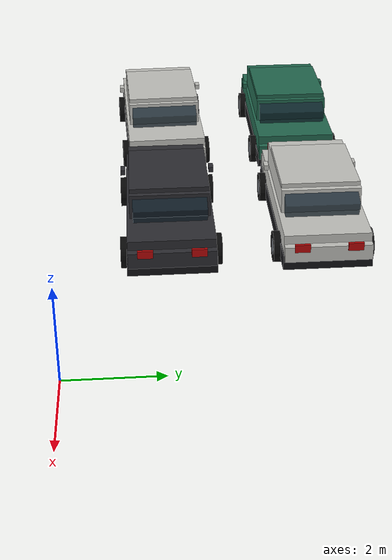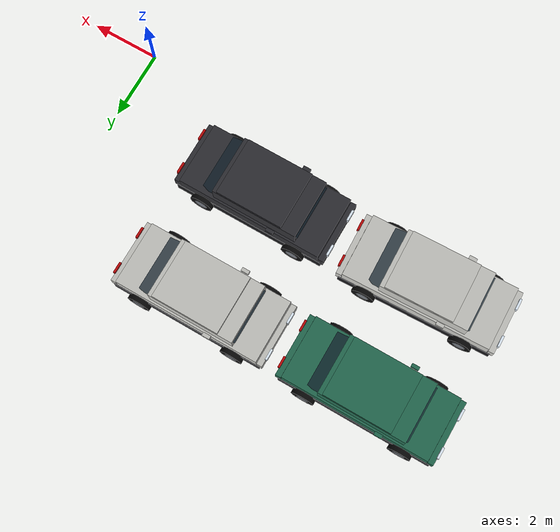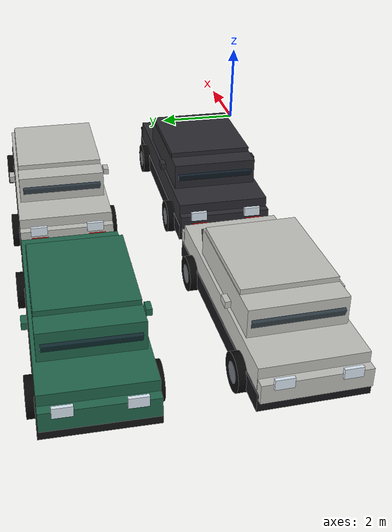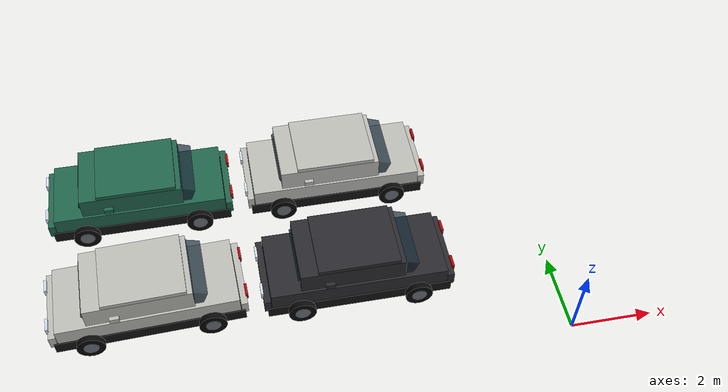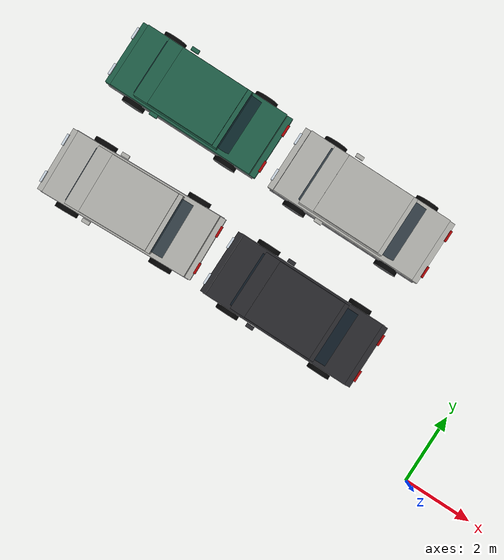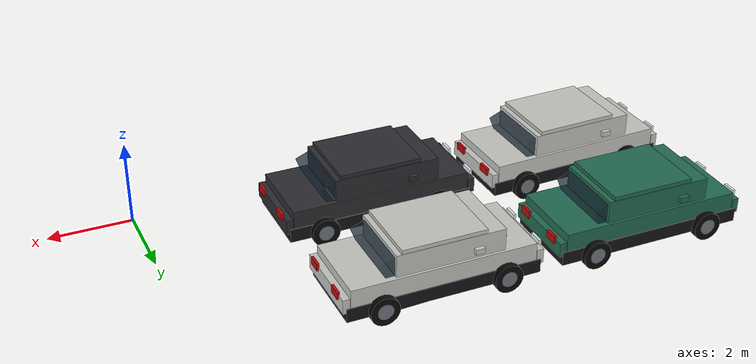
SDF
<sdf version="1.7">
 <world name="ev_car_carrier_deck_world">
  <model name="ev_11">
   <static>true</static>
   <pose>-10.0000 2.2000 0.2000 0.0000 0.0000 0.0350</pose>
   <link name="vehicle">
    <collision name="chassis_collision">
     <pose>0.0000 0.0000 0.4800 0.0000 0.0000 0.0000</pose>
     <geometry><box><size>4.45 1.86 0.32</size></box></geometry>
    </collision>
    <visual name="chassis_visual">
     <pose>0.0000 0.0000 0.4800 0.0000 0.0000 0.0000</pose>
     <geometry><box><size>4.45 1.86 0.32</size></box></geometry>
     <material><ambient>0.08 0.08 0.09 1</ambient><diffuse>0.08 0.08 0.09 1</diffuse></material>
    </visual>
    <collision name="lower_body_collision">
     <pose>0.0000 0.0000 0.7800 0.0000 0.0000 0.0000</pose>
     <geometry><box><size>4.25 1.82 0.55</size></box></geometry>
    </collision>
    <visual name="lower_body_visual">
     <pose>0.0000 0.0000 0.7800 0.0000 0.0000 0.0000</pose>
     <geometry><box><size>4.25 1.82 0.55</size></box></geometry>
     <material><ambient>0.78 0.78 0.76 1</ambient><diffuse>0.78 0.78 0.76 1</diffuse></material>
    </visual>
    <collision name="cabin_collision">
     <pose>-0.1500 0.0000 1.2500 0.0000 0.0000 0.0000</pose>
     <geometry><box><size>2.5 1.7 0.65</size></box></geometry>
    </collision>
    <visual name="cabin_visual">
     <pose>-0.1500 0.0000 1.2500 0.0000 0.0000 0.0000</pose>
     <geometry><box><size>2.5 1.7 0.65</size></box></geometry>
     <material><ambient>0.78 0.78 0.76 1</ambient><diffuse>0.78 0.78 0.76 1</diffuse></material>
    </visual>
    <visual name="windshield_visual">
     <pose>-1.0500 0.0000 1.3000 0.0000 -0.4000 0.0000</pose>
     <geometry><box><size>0.7 1.56 0.42</size></box></geometry>
     <material><ambient>0.1 0.17 0.22 0.75</ambient><diffuse>0.1 0.17 0.22 0.75</diffuse></material>
    </visual>
    <visual name="rear_glass_visual">
     <pose>1.1000 0.0000 1.2800 0.0000 0.3800 0.0000</pose>
     <geometry><box><size>0.55 1.56 0.4</size></box></geometry>
     <material><ambient>0.1 0.17 0.22 0.75</ambient><diffuse>0.1 0.17 0.22 0.75</diffuse></material>
    </visual>
    <collision name="roof_collision">
     <pose>0.0000 0.0000 1.6200 0.0000 0.0000 0.0000</pose>
     <geometry><box><size>1.95 1.68 0.1</size></box></geometry>
    </collision>
    <visual name="roof_visual">
     <pose>0.0000 0.0000 1.6200 0.0000 0.0000 0.0000</pose>
     <geometry><box><size>1.95 1.68 0.1</size></box></geometry>
     <material><ambient>0.78 0.78 0.76 1</ambient><diffuse>0.78 0.78 0.76 1</diffuse></material>
    </visual>
    <collision name="battery_pack_collision">
     <pose>0.1000 0.0000 0.3000 0.0000 0.0000 0.0000</pose>
     <geometry><box><size>2.75 1.45 0.16</size></box></geometry>
    </collision>
    <visual name="battery_pack_visual">
     <pose>0.1000 0.0000 0.3000 0.0000 0.0000 0.0000</pose>
     <geometry><box><size>2.75 1.45 0.16</size></box></geometry>
     <material><ambient>0.16 0.18 0.19 1</ambient><diffuse>0.16 0.18 0.19 1</diffuse></material>
    </visual>
    <collision name="front_bumper_collision">
     <pose>-2.2200 0.0000 0.7000 0.0000 0.0000 0.0000</pose>
     <geometry><box><size>0.16 1.82 0.34</size></box></geometry>
    </collision>
    <visual name="front_bumper_visual">
     <pose>-2.2200 0.0000 0.7000 0.0000 0.0000 0.0000</pose>
     <geometry><box><size>0.16 1.82 0.34</size></box></geometry>
     <material><ambient>0.78 0.78 0.76 1</ambient><diffuse>0.78 0.78 0.76 1</diffuse></material>
    </visual>
    <collision name="rear_bumper_collision">
     <pose>2.2200 0.0000 0.7000 0.0000 0.0000 0.0000</pose>
     <geometry><box><size>0.16 1.82 0.34</size></box></geometry>
    </collision>
    <visual name="rear_bumper_visual">
     <pose>2.2200 0.0000 0.7000 0.0000 0.0000 0.0000</pose>
     <geometry><box><size>0.16 1.82 0.34</size></box></geometry>
     <material><ambient>0.78 0.78 0.76 1</ambient><diffuse>0.78 0.78 0.76 1</diffuse></material>
    </visual>
    <collision name="wheel_0_0_collision">
     <pose>-1.4200 -0.9600 0.4300 1.5708 0.0000 0.0000</pose>
     <geometry><cylinder><radius>0.33</radius><length>0.2</length></cylinder></geometry>
    </collision>
    <visual name="wheel_0_0_visual">
     <pose>-1.4200 -0.9600 0.4300 1.5708 0.0000 0.0000</pose>
     <geometry><cylinder><radius>0.33</radius><length>0.2</length></cylinder></geometry>
     <material><ambient>0.035 0.035 0.035 1</ambient><diffuse>0.035 0.035 0.035 1</diffuse></material>
    </visual>
    <visual name="rim_0_0_visual">
     <pose>-1.4200 -0.9600 0.4300 1.5708 0.0000 0.0000</pose>
     <geometry><cylinder><radius>0.18</radius><length>0.205</length></cylinder></geometry>
     <material><ambient>0.45 0.47 0.5 1</ambient><diffuse>0.45 0.47 0.5 1</diffuse></material>
    </visual>
    <collision name="wheel_0_1_collision">
     <pose>-1.4200 0.9600 0.4300 1.5708 0.0000 0.0000</pose>
     <geometry><cylinder><radius>0.33</radius><length>0.2</length></cylinder></geometry>
    </collision>
    <visual name="wheel_0_1_visual">
     <pose>-1.4200 0.9600 0.4300 1.5708 0.0000 0.0000</pose>
     <geometry><cylinder><radius>0.33</radius><length>0.2</length></cylinder></geometry>
     <material><ambient>0.035 0.035 0.035 1</ambient><diffuse>0.035 0.035 0.035 1</diffuse></material>
    </visual>
    <visual name="rim_0_1_visual">
     <pose>-1.4200 0.9600 0.4300 1.5708 0.0000 0.0000</pose>
     <geometry><cylinder><radius>0.18</radius><length>0.205</length></cylinder></geometry>
     <material><ambient>0.45 0.47 0.5 1</ambient><diffuse>0.45 0.47 0.5 1</diffuse></material>
    </visual>
    <collision name="wheel_1_0_collision">
     <pose>1.4200 -0.9600 0.4300 1.5708 0.0000 0.0000</pose>
     <geometry><cylinder><radius>0.33</radius><length>0.2</length></cylinder></geometry>
    </collision>
    <visual name="wheel_1_0_visual">
     <pose>1.4200 -0.9600 0.4300 1.5708 0.0000 0.0000</pose>
     <geometry><cylinder><radius>0.33</radius><length>0.2</length></cylinder></geometry>
     <material><ambient>0.035 0.035 0.035 1</ambient><diffuse>0.035 0.035 0.035 1</diffuse></material>
    </visual>
    <visual name="rim_1_0_visual">
     <pose>1.4200 -0.9600 0.4300 1.5708 0.0000 0.0000</pose>
     <geometry><cylinder><radius>0.18</radius><length>0.205</length></cylinder></geometry>
     <material><ambient>0.45 0.47 0.5 1</ambient><diffuse>0.45 0.47 0.5 1</diffuse></material>
    </visual>
    <collision name="wheel_1_1_collision">
     <pose>1.4200 0.9600 0.4300 1.5708 0.0000 0.0000</pose>
     <geometry><cylinder><radius>0.33</radius><length>0.2</length></cylinder></geometry>
    </collision>
    <visual name="wheel_1_1_visual">
     <pose>1.4200 0.9600 0.4300 1.5708 0.0000 0.0000</pose>
     <geometry><cylinder><radius>0.33</radius><length>0.2</length></cylinder></geometry>
     <material><ambient>0.035 0.035 0.035 1</ambient><diffuse>0.035 0.035 0.035 1</diffuse></material>
    </visual>
    <visual name="rim_1_1_visual">
     <pose>1.4200 0.9600 0.4300 1.5708 0.0000 0.0000</pose>
     <geometry><cylinder><radius>0.18</radius><length>0.205</length></cylinder></geometry>
     <material><ambient>0.45 0.47 0.5 1</ambient><diffuse>0.45 0.47 0.5 1</diffuse></material>
    </visual>
    <visual name="headlight_l_visual">
     <pose>-2.3100 -0.5500 0.8800 0.0000 0.0000 0.0000</pose>
     <geometry><box><size>0.06 0.32 0.18</size></box></geometry>
     <material><ambient>0.9 0.95 1.0 1</ambient><diffuse>0.9 0.95 1.0 1</diffuse></material>
    </visual>
    <visual name="headlight_r_visual">
     <pose>-2.3100 0.5500 0.8800 0.0000 0.0000 0.0000</pose>
     <geometry><box><size>0.06 0.32 0.18</size></box></geometry>
     <material><ambient>0.9 0.95 1.0 1</ambient><diffuse>0.9 0.95 1.0 1</diffuse></material>
    </visual>
    <visual name="taillight_l_visual">
     <pose>2.3100 -0.5500 0.8600 0.0000 0.0000 0.0000</pose>
     <geometry><box><size>0.06 0.32 0.17</size></box></geometry>
     <material><ambient>0.75 0.03 0.03 1</ambient><diffuse>0.75 0.03 0.03 1</diffuse></material>
    </visual>
    <visual name="taillight_r_visual">
     <pose>2.3100 0.5500 0.8600 0.0000 0.0000 0.0000</pose>
     <geometry><box><size>0.06 0.32 0.17</size></box></geometry>
     <material><ambient>0.75 0.03 0.03 1</ambient><diffuse>0.75 0.03 0.03 1</diffuse></material>
    </visual>
    <collision name="mirror_l_collision">
     <pose>-0.7200 -0.9800 1.3000 0.0000 0.0000 0.0000</pose>
     <geometry><box><size>0.22 0.1 0.12</size></box></geometry>
    </collision>
    <visual name="mirror_l_visual">
     <pose>-0.7200 -0.9800 1.3000 0.0000 0.0000 0.0000</pose>
     <geometry><box><size>0.22 0.1 0.12</size></box></geometry>
     <material><ambient>0.78 0.78 0.76 1</ambient><diffuse>0.78 0.78 0.76 1</diffuse></material>
    </visual>
    <collision name="mirror_r_collision">
     <pose>-0.7200 0.9800 1.3000 0.0000 0.0000 0.0000</pose>
     <geometry><box><size>0.22 0.1 0.12</size></box></geometry>
    </collision>
    <visual name="mirror_r_visual">
     <pose>-0.7200 0.9800 1.3000 0.0000 0.0000 0.0000</pose>
     <geometry><box><size>0.22 0.1 0.12</size></box></geometry>
     <material><ambient>0.78 0.78 0.76 1</ambient><diffuse>0.78 0.78 0.76 1</diffuse></material>
    </visual>
   </link>
  </model>
  <model name="ev_12">
   <static>true</static>
   <pose>-5.0000 2.2000 0.2000 0.0000 0.0000 0.0000</pose>
   <link name="vehicle">
    <collision name="chassis_collision">
     <pose>0.0000 0.0000 0.4800 0.0000 0.0000 0.0000</pose>
     <geometry><box><size>4.45 1.86 0.32</size></box></geometry>
    </collision>
    <visual name="chassis_visual">
     <pose>0.0000 0.0000 0.4800 0.0000 0.0000 0.0000</pose>
     <geometry><box><size>4.45 1.86 0.32</size></box></geometry>
     <material><ambient>0.08 0.08 0.09 1</ambient><diffuse>0.08 0.08 0.09 1</diffuse></material>
    </visual>
    <collision name="lower_body_collision">
     <pose>0.0000 0.0000 0.7800 0.0000 0.0000 0.0000</pose>
     <geometry><box><size>4.25 1.82 0.55</size></box></geometry>
    </collision>
    <visual name="lower_body_visual">
     <pose>0.0000 0.0000 0.7800 0.0000 0.0000 0.0000</pose>
     <geometry><box><size>4.25 1.82 0.55</size></box></geometry>
     <material><ambient>0.18 0.18 0.2 1</ambient><diffuse>0.18 0.18 0.2 1</diffuse></material>
    </visual>
    <collision name="cabin_collision">
     <pose>-0.1500 0.0000 1.2500 0.0000 0.0000 0.0000</pose>
     <geometry><box><size>2.5 1.7 0.65</size></box></geometry>
    </collision>
    <visual name="cabin_visual">
     <pose>-0.1500 0.0000 1.2500 0.0000 0.0000 0.0000</pose>
     <geometry><box><size>2.5 1.7 0.65</size></box></geometry>
     <material><ambient>0.18 0.18 0.2 1</ambient><diffuse>0.18 0.18 0.2 1</diffuse></material>
    </visual>
    <visual name="windshield_visual">
     <pose>-1.0500 0.0000 1.3000 0.0000 -0.4000 0.0000</pose>
     <geometry><box><size>0.7 1.56 0.42</size></box></geometry>
     <material><ambient>0.1 0.17 0.22 0.75</ambient><diffuse>0.1 0.17 0.22 0.75</diffuse></material>
    </visual>
    <visual name="rear_glass_visual">
     <pose>1.1000 0.0000 1.2800 0.0000 0.3800 0.0000</pose>
     <geometry><box><size>0.55 1.56 0.4</size></box></geometry>
     <material><ambient>0.1 0.17 0.22 0.75</ambient><diffuse>0.1 0.17 0.22 0.75</diffuse></material>
    </visual>
    <collision name="roof_collision">
     <pose>0.0000 0.0000 1.6200 0.0000 0.0000 0.0000</pose>
     <geometry><box><size>1.95 1.68 0.1</size></box></geometry>
    </collision>
    <visual name="roof_visual">
     <pose>0.0000 0.0000 1.6200 0.0000 0.0000 0.0000</pose>
     <geometry><box><size>1.95 1.68 0.1</size></box></geometry>
     <material><ambient>0.18 0.18 0.2 1</ambient><diffuse>0.18 0.18 0.2 1</diffuse></material>
    </visual>
    <collision name="battery_pack_collision">
     <pose>0.1000 0.0000 0.3000 0.0000 0.0000 0.0000</pose>
     <geometry><box><size>2.75 1.45 0.16</size></box></geometry>
    </collision>
    <visual name="battery_pack_visual">
     <pose>0.1000 0.0000 0.3000 0.0000 0.0000 0.0000</pose>
     <geometry><box><size>2.75 1.45 0.16</size></box></geometry>
     <material><ambient>0.16 0.18 0.19 1</ambient><diffuse>0.16 0.18 0.19 1</diffuse></material>
    </visual>
    <collision name="front_bumper_collision">
     <pose>-2.2200 0.0000 0.7000 0.0000 0.0000 0.0000</pose>
     <geometry><box><size>0.16 1.82 0.34</size></box></geometry>
    </collision>
    <visual name="front_bumper_visual">
     <pose>-2.2200 0.0000 0.7000 0.0000 0.0000 0.0000</pose>
     <geometry><box><size>0.16 1.82 0.34</size></box></geometry>
     <material><ambient>0.18 0.18 0.2 1</ambient><diffuse>0.18 0.18 0.2 1</diffuse></material>
    </visual>
    <collision name="rear_bumper_collision">
     <pose>2.2200 0.0000 0.7000 0.0000 0.0000 0.0000</pose>
     <geometry><box><size>0.16 1.82 0.34</size></box></geometry>
    </collision>
    <visual name="rear_bumper_visual">
     <pose>2.2200 0.0000 0.7000 0.0000 0.0000 0.0000</pose>
     <geometry><box><size>0.16 1.82 0.34</size></box></geometry>
     <material><ambient>0.18 0.18 0.2 1</ambient><diffuse>0.18 0.18 0.2 1</diffuse></material>
    </visual>
    <collision name="wheel_0_0_collision">
     <pose>-1.4200 -0.9600 0.4300 1.5708 0.0000 0.0000</pose>
     <geometry><cylinder><radius>0.33</radius><length>0.2</length></cylinder></geometry>
    </collision>
    <visual name="wheel_0_0_visual">
     <pose>-1.4200 -0.9600 0.4300 1.5708 0.0000 0.0000</pose>
     <geometry><cylinder><radius>0.33</radius><length>0.2</length></cylinder></geometry>
     <material><ambient>0.035 0.035 0.035 1</ambient><diffuse>0.035 0.035 0.035 1</diffuse></material>
    </visual>
    <visual name="rim_0_0_visual">
     <pose>-1.4200 -0.9600 0.4300 1.5708 0.0000 0.0000</pose>
     <geometry><cylinder><radius>0.18</radius><length>0.205</length></cylinder></geometry>
     <material><ambient>0.45 0.47 0.5 1</ambient><diffuse>0.45 0.47 0.5 1</diffuse></material>
    </visual>
    <collision name="wheel_0_1_collision">
     <pose>-1.4200 0.9600 0.4300 1.5708 0.0000 0.0000</pose>
     <geometry><cylinder><radius>0.33</radius><length>0.2</length></cylinder></geometry>
    </collision>
    <visual name="wheel_0_1_visual">
     <pose>-1.4200 0.9600 0.4300 1.5708 0.0000 0.0000</pose>
     <geometry><cylinder><radius>0.33</radius><length>0.2</length></cylinder></geometry>
     <material><ambient>0.035 0.035 0.035 1</ambient><diffuse>0.035 0.035 0.035 1</diffuse></material>
    </visual>
    <visual name="rim_0_1_visual">
     <pose>-1.4200 0.9600 0.4300 1.5708 0.0000 0.0000</pose>
     <geometry><cylinder><radius>0.18</radius><length>0.205</length></cylinder></geometry>
     <material><ambient>0.45 0.47 0.5 1</ambient><diffuse>0.45 0.47 0.5 1</diffuse></material>
    </visual>
    <collision name="wheel_1_0_collision">
     <pose>1.4200 -0.9600 0.4300 1.5708 0.0000 0.0000</pose>
     <geometry><cylinder><radius>0.33</radius><length>0.2</length></cylinder></geometry>
    </collision>
    <visual name="wheel_1_0_visual">
     <pose>1.4200 -0.9600 0.4300 1.5708 0.0000 0.0000</pose>
     <geometry><cylinder><radius>0.33</radius><length>0.2</length></cylinder></geometry>
     <material><ambient>0.035 0.035 0.035 1</ambient><diffuse>0.035 0.035 0.035 1</diffuse></material>
    </visual>
    <visual name="rim_1_0_visual">
     <pose>1.4200 -0.9600 0.4300 1.5708 0.0000 0.0000</pose>
     <geometry><cylinder><radius>0.18</radius><length>0.205</length></cylinder></geometry>
     <material><ambient>0.45 0.47 0.5 1</ambient><diffuse>0.45 0.47 0.5 1</diffuse></material>
    </visual>
    <collision name="wheel_1_1_collision">
     <pose>1.4200 0.9600 0.4300 1.5708 0.0000 0.0000</pose>
     <geometry><cylinder><radius>0.33</radius><length>0.2</length></cylinder></geometry>
    </collision>
    <visual name="wheel_1_1_visual">
     <pose>1.4200 0.9600 0.4300 1.5708 0.0000 0.0000</pose>
     <geometry><cylinder><radius>0.33</radius><length>0.2</length></cylinder></geometry>
     <material><ambient>0.035 0.035 0.035 1</ambient><diffuse>0.035 0.035 0.035 1</diffuse></material>
    </visual>
    <visual name="rim_1_1_visual">
     <pose>1.4200 0.9600 0.4300 1.5708 0.0000 0.0000</pose>
     <geometry><cylinder><radius>0.18</radius><length>0.205</length></cylinder></geometry>
     <material><ambient>0.45 0.47 0.5 1</ambient><diffuse>0.45 0.47 0.5 1</diffuse></material>
    </visual>
    <visual name="headlight_l_visual">
     <pose>-2.3100 -0.5500 0.8800 0.0000 0.0000 0.0000</pose>
     <geometry><box><size>0.06 0.32 0.18</size></box></geometry>
     <material><ambient>0.9 0.95 1.0 1</ambient><diffuse>0.9 0.95 1.0 1</diffuse></material>
    </visual>
    <visual name="headlight_r_visual">
     <pose>-2.3100 0.5500 0.8800 0.0000 0.0000 0.0000</pose>
     <geometry><box><size>0.06 0.32 0.18</size></box></geometry>
     <material><ambient>0.9 0.95 1.0 1</ambient><diffuse>0.9 0.95 1.0 1</diffuse></material>
    </visual>
    <visual name="taillight_l_visual">
     <pose>2.3100 -0.5500 0.8600 0.0000 0.0000 0.0000</pose>
     <geometry><box><size>0.06 0.32 0.17</size></box></geometry>
     <material><ambient>0.75 0.03 0.03 1</ambient><diffuse>0.75 0.03 0.03 1</diffuse></material>
    </visual>
    <visual name="taillight_r_visual">
     <pose>2.3100 0.5500 0.8600 0.0000 0.0000 0.0000</pose>
     <geometry><box><size>0.06 0.32 0.17</size></box></geometry>
     <material><ambient>0.75 0.03 0.03 1</ambient><diffuse>0.75 0.03 0.03 1</diffuse></material>
    </visual>
    <collision name="mirror_l_collision">
     <pose>-0.7200 -0.9800 1.3000 0.0000 0.0000 0.0000</pose>
     <geometry><box><size>0.22 0.1 0.12</size></box></geometry>
    </collision>
    <visual name="mirror_l_visual">
     <pose>-0.7200 -0.9800 1.3000 0.0000 0.0000 0.0000</pose>
     <geometry><box><size>0.22 0.1 0.12</size></box></geometry>
     <material><ambient>0.18 0.18 0.2 1</ambient><diffuse>0.18 0.18 0.2 1</diffuse></material>
    </visual>
    <collision name="mirror_r_collision">
     <pose>-0.7200 0.9800 1.3000 0.0000 0.0000 0.0000</pose>
     <geometry><box><size>0.22 0.1 0.12</size></box></geometry>
    </collision>
    <visual name="mirror_r_visual">
     <pose>-0.7200 0.9800 1.3000 0.0000 0.0000 0.0000</pose>
     <geometry><box><size>0.22 0.1 0.12</size></box></geometry>
     <material><ambient>0.18 0.18 0.2 1</ambient><diffuse>0.18 0.18 0.2 1</diffuse></material>
    </visual>
   </link>
  </model>
  <model name="ev_16">
   <static>true</static>
   <pose>-10.0000 5.4000 0.2000 0.0000 0.0000 0.0000</pose>
   <link name="vehicle">
    <collision name="chassis_collision">
     <pose>0.0000 0.0000 0.4800 0.0000 0.0000 0.0000</pose>
     <geometry><box><size>4.45 1.86 0.32</size></box></geometry>
    </collision>
    <visual name="chassis_visual">
     <pose>0.0000 0.0000 0.4800 0.0000 0.0000 0.0000</pose>
     <geometry><box><size>4.45 1.86 0.32</size></box></geometry>
     <material><ambient>0.08 0.08 0.09 1</ambient><diffuse>0.08 0.08 0.09 1</diffuse></material>
    </visual>
    <collision name="lower_body_collision">
     <pose>0.0000 0.0000 0.7800 0.0000 0.0000 0.0000</pose>
     <geometry><box><size>4.25 1.82 0.55</size></box></geometry>
    </collision>
    <visual name="lower_body_visual">
     <pose>0.0000 0.0000 0.7800 0.0000 0.0000 0.0000</pose>
     <geometry><box><size>4.25 1.82 0.55</size></box></geometry>
     <material><ambient>0.14 0.42 0.32 1</ambient><diffuse>0.14 0.42 0.32 1</diffuse></material>
    </visual>
    <collision name="cabin_collision">
     <pose>-0.1500 0.0000 1.2500 0.0000 0.0000 0.0000</pose>
     <geometry><box><size>2.5 1.7 0.65</size></box></geometry>
    </collision>
    <visual name="cabin_visual">
     <pose>-0.1500 0.0000 1.2500 0.0000 0.0000 0.0000</pose>
     <geometry><box><size>2.5 1.7 0.65</size></box></geometry>
     <material><ambient>0.14 0.42 0.32 1</ambient><diffuse>0.14 0.42 0.32 1</diffuse></material>
    </visual>
    <visual name="windshield_visual">
     <pose>-1.0500 0.0000 1.3000 0.0000 -0.4000 0.0000</pose>
     <geometry><box><size>0.7 1.56 0.42</size></box></geometry>
     <material><ambient>0.1 0.17 0.22 0.75</ambient><diffuse>0.1 0.17 0.22 0.75</diffuse></material>
    </visual>
    <visual name="rear_glass_visual">
     <pose>1.1000 0.0000 1.2800 0.0000 0.3800 0.0000</pose>
     <geometry><box><size>0.55 1.56 0.4</size></box></geometry>
     <material><ambient>0.1 0.17 0.22 0.75</ambient><diffuse>0.1 0.17 0.22 0.75</diffuse></material>
    </visual>
    <collision name="roof_collision">
     <pose>0.0000 0.0000 1.6200 0.0000 0.0000 0.0000</pose>
     <geometry><box><size>1.95 1.68 0.1</size></box></geometry>
    </collision>
    <visual name="roof_visual">
     <pose>0.0000 0.0000 1.6200 0.0000 0.0000 0.0000</pose>
     <geometry><box><size>1.95 1.68 0.1</size></box></geometry>
     <material><ambient>0.14 0.42 0.32 1</ambient><diffuse>0.14 0.42 0.32 1</diffuse></material>
    </visual>
    <collision name="battery_pack_collision">
     <pose>0.1000 0.0000 0.3000 0.0000 0.0000 0.0000</pose>
     <geometry><box><size>2.75 1.45 0.16</size></box></geometry>
    </collision>
    <visual name="battery_pack_visual">
     <pose>0.1000 0.0000 0.3000 0.0000 0.0000 0.0000</pose>
     <geometry><box><size>2.75 1.45 0.16</size></box></geometry>
     <material><ambient>0.16 0.18 0.19 1</ambient><diffuse>0.16 0.18 0.19 1</diffuse></material>
    </visual>
    <collision name="front_bumper_collision">
     <pose>-2.2200 0.0000 0.7000 0.0000 0.0000 0.0000</pose>
     <geometry><box><size>0.16 1.82 0.34</size></box></geometry>
    </collision>
    <visual name="front_bumper_visual">
     <pose>-2.2200 0.0000 0.7000 0.0000 0.0000 0.0000</pose>
     <geometry><box><size>0.16 1.82 0.34</size></box></geometry>
     <material><ambient>0.14 0.42 0.32 1</ambient><diffuse>0.14 0.42 0.32 1</diffuse></material>
    </visual>
    <collision name="rear_bumper_collision">
     <pose>2.2200 0.0000 0.7000 0.0000 0.0000 0.0000</pose>
     <geometry><box><size>0.16 1.82 0.34</size></box></geometry>
    </collision>
    <visual name="rear_bumper_visual">
     <pose>2.2200 0.0000 0.7000 0.0000 0.0000 0.0000</pose>
     <geometry><box><size>0.16 1.82 0.34</size></box></geometry>
     <material><ambient>0.14 0.42 0.32 1</ambient><diffuse>0.14 0.42 0.32 1</diffuse></material>
    </visual>
    <collision name="wheel_0_0_collision">
     <pose>-1.4200 -0.9600 0.4300 1.5708 0.0000 0.0000</pose>
     <geometry><cylinder><radius>0.33</radius><length>0.2</length></cylinder></geometry>
    </collision>
    <visual name="wheel_0_0_visual">
     <pose>-1.4200 -0.9600 0.4300 1.5708 0.0000 0.0000</pose>
     <geometry><cylinder><radius>0.33</radius><length>0.2</length></cylinder></geometry>
     <material><ambient>0.035 0.035 0.035 1</ambient><diffuse>0.035 0.035 0.035 1</diffuse></material>
    </visual>
    <visual name="rim_0_0_visual">
     <pose>-1.4200 -0.9600 0.4300 1.5708 0.0000 0.0000</pose>
     <geometry><cylinder><radius>0.18</radius><length>0.205</length></cylinder></geometry>
     <material><ambient>0.45 0.47 0.5 1</ambient><diffuse>0.45 0.47 0.5 1</diffuse></material>
    </visual>
    <collision name="wheel_0_1_collision">
     <pose>-1.4200 0.9600 0.4300 1.5708 0.0000 0.0000</pose>
     <geometry><cylinder><radius>0.33</radius><length>0.2</length></cylinder></geometry>
    </collision>
    <visual name="wheel_0_1_visual">
     <pose>-1.4200 0.9600 0.4300 1.5708 0.0000 0.0000</pose>
     <geometry><cylinder><radius>0.33</radius><length>0.2</length></cylinder></geometry>
     <material><ambient>0.035 0.035 0.035 1</ambient><diffuse>0.035 0.035 0.035 1</diffuse></material>
    </visual>
    <visual name="rim_0_1_visual">
     <pose>-1.4200 0.9600 0.4300 1.5708 0.0000 0.0000</pose>
     <geometry><cylinder><radius>0.18</radius><length>0.205</length></cylinder></geometry>
     <material><ambient>0.45 0.47 0.5 1</ambient><diffuse>0.45 0.47 0.5 1</diffuse></material>
    </visual>
    <collision name="wheel_1_0_collision">
     <pose>1.4200 -0.9600 0.4300 1.5708 0.0000 0.0000</pose>
     <geometry><cylinder><radius>0.33</radius><length>0.2</length></cylinder></geometry>
    </collision>
    <visual name="wheel_1_0_visual">
     <pose>1.4200 -0.9600 0.4300 1.5708 0.0000 0.0000</pose>
     <geometry><cylinder><radius>0.33</radius><length>0.2</length></cylinder></geometry>
     <material><ambient>0.035 0.035 0.035 1</ambient><diffuse>0.035 0.035 0.035 1</diffuse></material>
    </visual>
    <visual name="rim_1_0_visual">
     <pose>1.4200 -0.9600 0.4300 1.5708 0.0000 0.0000</pose>
     <geometry><cylinder><radius>0.18</radius><length>0.205</length></cylinder></geometry>
     <material><ambient>0.45 0.47 0.5 1</ambient><diffuse>0.45 0.47 0.5 1</diffuse></material>
    </visual>
    <collision name="wheel_1_1_collision">
     <pose>1.4200 0.9600 0.4300 1.5708 0.0000 0.0000</pose>
     <geometry><cylinder><radius>0.33</radius><length>0.2</length></cylinder></geometry>
    </collision>
    <visual name="wheel_1_1_visual">
     <pose>1.4200 0.9600 0.4300 1.5708 0.0000 0.0000</pose>
     <geometry><cylinder><radius>0.33</radius><length>0.2</length></cylinder></geometry>
     <material><ambient>0.035 0.035 0.035 1</ambient><diffuse>0.035 0.035 0.035 1</diffuse></material>
    </visual>
    <visual name="rim_1_1_visual">
     <pose>1.4200 0.9600 0.4300 1.5708 0.0000 0.0000</pose>
     <geometry><cylinder><radius>0.18</radius><length>0.205</length></cylinder></geometry>
     <material><ambient>0.45 0.47 0.5 1</ambient><diffuse>0.45 0.47 0.5 1</diffuse></material>
    </visual>
    <visual name="headlight_l_visual">
     <pose>-2.3100 -0.5500 0.8800 0.0000 0.0000 0.0000</pose>
     <geometry><box><size>0.06 0.32 0.18</size></box></geometry>
     <material><ambient>0.9 0.95 1.0 1</ambient><diffuse>0.9 0.95 1.0 1</diffuse></material>
    </visual>
    <visual name="headlight_r_visual">
     <pose>-2.3100 0.5500 0.8800 0.0000 0.0000 0.0000</pose>
     <geometry><box><size>0.06 0.32 0.18</size></box></geometry>
     <material><ambient>0.9 0.95 1.0 1</ambient><diffuse>0.9 0.95 1.0 1</diffuse></material>
    </visual>
    <visual name="taillight_l_visual">
     <pose>2.3100 -0.5500 0.8600 0.0000 0.0000 0.0000</pose>
     <geometry><box><size>0.06 0.32 0.17</size></box></geometry>
     <material><ambient>0.75 0.03 0.03 1</ambient><diffuse>0.75 0.03 0.03 1</diffuse></material>
    </visual>
    <visual name="taillight_r_visual">
     <pose>2.3100 0.5500 0.8600 0.0000 0.0000 0.0000</pose>
     <geometry><box><size>0.06 0.32 0.17</size></box></geometry>
     <material><ambient>0.75 0.03 0.03 1</ambient><diffuse>0.75 0.03 0.03 1</diffuse></material>
    </visual>
    <collision name="mirror_l_collision">
     <pose>-0.7200 -0.9800 1.3000 0.0000 0.0000 0.0000</pose>
     <geometry><box><size>0.22 0.1 0.12</size></box></geometry>
    </collision>
    <visual name="mirror_l_visual">
     <pose>-0.7200 -0.9800 1.3000 0.0000 0.0000 0.0000</pose>
     <geometry><box><size>0.22 0.1 0.12</size></box></geometry>
     <material><ambient>0.14 0.42 0.32 1</ambient><diffuse>0.14 0.42 0.32 1</diffuse></material>
    </visual>
    <collision name="mirror_r_collision">
     <pose>-0.7200 0.9800 1.3000 0.0000 0.0000 0.0000</pose>
     <geometry><box><size>0.22 0.1 0.12</size></box></geometry>
    </collision>
    <visual name="mirror_r_visual">
     <pose>-0.7200 0.9800 1.3000 0.0000 0.0000 0.0000</pose>
     <geometry><box><size>0.22 0.1 0.12</size></box></geometry>
     <material><ambient>0.14 0.42 0.32 1</ambient><diffuse>0.14 0.42 0.32 1</diffuse></material>
    </visual>
   </link>
  </model>
  <model name="ev_17">
   <static>true</static>
   <pose>-5.0000 5.4000 0.2000 0.0000 0.0000 0.0000</pose>
   <link name="vehicle">
    <collision name="chassis_collision">
     <pose>0.0000 0.0000 0.4800 0.0000 0.0000 0.0000</pose>
     <geometry><box><size>4.45 1.86 0.32</size></box></geometry>
    </collision>
    <visual name="chassis_visual">
     <pose>0.0000 0.0000 0.4800 0.0000 0.0000 0.0000</pose>
     <geometry><box><size>4.45 1.86 0.32</size></box></geometry>
     <material><ambient>0.08 0.08 0.09 1</ambient><diffuse>0.08 0.08 0.09 1</diffuse></material>
    </visual>
    <collision name="lower_body_collision">
     <pose>0.0000 0.0000 0.7800 0.0000 0.0000 0.0000</pose>
     <geometry><box><size>4.25 1.82 0.55</size></box></geometry>
    </collision>
    <visual name="lower_body_visual">
     <pose>0.0000 0.0000 0.7800 0.0000 0.0000 0.0000</pose>
     <geometry><box><size>4.25 1.82 0.55</size></box></geometry>
     <material><ambient>0.78 0.78 0.76 1</ambient><diffuse>0.78 0.78 0.76 1</diffuse></material>
    </visual>
    <collision name="cabin_collision">
     <pose>-0.1500 0.0000 1.2500 0.0000 0.0000 0.0000</pose>
     <geometry><box><size>2.5 1.7 0.65</size></box></geometry>
    </collision>
    <visual name="cabin_visual">
     <pose>-0.1500 0.0000 1.2500 0.0000 0.0000 0.0000</pose>
     <geometry><box><size>2.5 1.7 0.65</size></box></geometry>
     <material><ambient>0.78 0.78 0.76 1</ambient><diffuse>0.78 0.78 0.76 1</diffuse></material>
    </visual>
    <visual name="windshield_visual">
     <pose>-1.0500 0.0000 1.3000 0.0000 -0.4000 0.0000</pose>
     <geometry><box><size>0.7 1.56 0.42</size></box></geometry>
     <material><ambient>0.1 0.17 0.22 0.75</ambient><diffuse>0.1 0.17 0.22 0.75</diffuse></material>
    </visual>
    <visual name="rear_glass_visual">
     <pose>1.1000 0.0000 1.2800 0.0000 0.3800 0.0000</pose>
     <geometry><box><size>0.55 1.56 0.4</size></box></geometry>
     <material><ambient>0.1 0.17 0.22 0.75</ambient><diffuse>0.1 0.17 0.22 0.75</diffuse></material>
    </visual>
    <collision name="roof_collision">
     <pose>0.0000 0.0000 1.6200 0.0000 0.0000 0.0000</pose>
     <geometry><box><size>1.95 1.68 0.1</size></box></geometry>
    </collision>
    <visual name="roof_visual">
     <pose>0.0000 0.0000 1.6200 0.0000 0.0000 0.0000</pose>
     <geometry><box><size>1.95 1.68 0.1</size></box></geometry>
     <material><ambient>0.78 0.78 0.76 1</ambient><diffuse>0.78 0.78 0.76 1</diffuse></material>
    </visual>
    <collision name="battery_pack_collision">
     <pose>0.1000 0.0000 0.2400 0.0000 0.0350 0.0000</pose>
     <geometry><box><size>2.75 1.45 0.16</size></box></geometry>
    </collision>
    <visual name="battery_pack_visual">
     <pose>0.1000 0.0000 0.2400 0.0000 0.0350 0.0000</pose>
     <geometry><box><size>2.75 1.45 0.16</size></box></geometry>
     <material><ambient>0.16 0.18 0.19 1</ambient><diffuse>0.16 0.18 0.19 1</diffuse></material>
    </visual>
    <collision name="front_bumper_collision">
     <pose>-2.2200 0.0000 0.7000 0.0000 0.0000 0.0000</pose>
     <geometry><box><size>0.16 1.82 0.34</size></box></geometry>
    </collision>
    <visual name="front_bumper_visual">
     <pose>-2.2200 0.0000 0.7000 0.0000 0.0000 0.0000</pose>
     <geometry><box><size>0.16 1.82 0.34</size></box></geometry>
     <material><ambient>0.78 0.78 0.76 1</ambient><diffuse>0.78 0.78 0.76 1</diffuse></material>
    </visual>
    <collision name="rear_bumper_collision">
     <pose>2.2200 0.0000 0.7000 0.0000 0.0000 0.0000</pose>
     <geometry><box><size>0.16 1.82 0.34</size></box></geometry>
    </collision>
    <visual name="rear_bumper_visual">
     <pose>2.2200 0.0000 0.7000 0.0000 0.0000 0.0000</pose>
     <geometry><box><size>0.16 1.82 0.34</size></box></geometry>
     <material><ambient>0.78 0.78 0.76 1</ambient><diffuse>0.78 0.78 0.76 1</diffuse></material>
    </visual>
    <collision name="wheel_0_0_collision">
     <pose>-1.4200 -0.9600 0.4300 1.5708 0.0000 0.0000</pose>
     <geometry><cylinder><radius>0.33</radius><length>0.2</length></cylinder></geometry>
    </collision>
    <visual name="wheel_0_0_visual">
     <pose>-1.4200 -0.9600 0.4300 1.5708 0.0000 0.0000</pose>
     <geometry><cylinder><radius>0.33</radius><length>0.2</length></cylinder></geometry>
     <material><ambient>0.035 0.035 0.035 1</ambient><diffuse>0.035 0.035 0.035 1</diffuse></material>
    </visual>
    <visual name="rim_0_0_visual">
     <pose>-1.4200 -0.9600 0.4300 1.5708 0.0000 0.0000</pose>
     <geometry><cylinder><radius>0.18</radius><length>0.205</length></cylinder></geometry>
     <material><ambient>0.45 0.47 0.5 1</ambient><diffuse>0.45 0.47 0.5 1</diffuse></material>
    </visual>
    <collision name="wheel_0_1_collision">
     <pose>-1.4200 0.9600 0.4300 1.5708 0.0000 0.0000</pose>
     <geometry><cylinder><radius>0.33</radius><length>0.2</length></cylinder></geometry>
    </collision>
    <visual name="wheel_0_1_visual">
     <pose>-1.4200 0.9600 0.4300 1.5708 0.0000 0.0000</pose>
     <geometry><cylinder><radius>0.33</radius><length>0.2</length></cylinder></geometry>
     <material><ambient>0.035 0.035 0.035 1</ambient><diffuse>0.035 0.035 0.035 1</diffuse></material>
    </visual>
    <visual name="rim_0_1_visual">
     <pose>-1.4200 0.9600 0.4300 1.5708 0.0000 0.0000</pose>
     <geometry><cylinder><radius>0.18</radius><length>0.205</length></cylinder></geometry>
     <material><ambient>0.45 0.47 0.5 1</ambient><diffuse>0.45 0.47 0.5 1</diffuse></material>
    </visual>
    <collision name="wheel_1_0_collision">
     <pose>1.4200 -0.9600 0.4300 1.5708 0.0000 0.0000</pose>
     <geometry><cylinder><radius>0.33</radius><length>0.2</length></cylinder></geometry>
    </collision>
    <visual name="wheel_1_0_visual">
     <pose>1.4200 -0.9600 0.4300 1.5708 0.0000 0.0000</pose>
     <geometry><cylinder><radius>0.33</radius><length>0.2</length></cylinder></geometry>
     <material><ambient>0.035 0.035 0.035 1</ambient><diffuse>0.035 0.035 0.035 1</diffuse></material>
    </visual>
    <visual name="rim_1_0_visual">
     <pose>1.4200 -0.9600 0.4300 1.5708 0.0000 0.0000</pose>
     <geometry><cylinder><radius>0.18</radius><length>0.205</length></cylinder></geometry>
     <material><ambient>0.45 0.47 0.5 1</ambient><diffuse>0.45 0.47 0.5 1</diffuse></material>
    </visual>
    <collision name="wheel_1_1_collision">
     <pose>1.4200 0.9600 0.4300 1.5708 0.0000 0.0000</pose>
     <geometry><cylinder><radius>0.33</radius><length>0.2</length></cylinder></geometry>
    </collision>
    <visual name="wheel_1_1_visual">
     <pose>1.4200 0.9600 0.4300 1.5708 0.0000 0.0000</pose>
     <geometry><cylinder><radius>0.33</radius><length>0.2</length></cylinder></geometry>
     <material><ambient>0.035 0.035 0.035 1</ambient><diffuse>0.035 0.035 0.035 1</diffuse></material>
    </visual>
    <visual name="rim_1_1_visual">
     <pose>1.4200 0.9600 0.4300 1.5708 0.0000 0.0000</pose>
     <geometry><cylinder><radius>0.18</radius><length>0.205</length></cylinder></geometry>
     <material><ambient>0.45 0.47 0.5 1</ambient><diffuse>0.45 0.47 0.5 1</diffuse></material>
    </visual>
    <visual name="headlight_l_visual">
     <pose>-2.3100 -0.5500 0.8800 0.0000 0.0000 0.0000</pose>
     <geometry><box><size>0.06 0.32 0.18</size></box></geometry>
     <material><ambient>0.9 0.95 1.0 1</ambient><diffuse>0.9 0.95 1.0 1</diffuse></material>
    </visual>
    <visual name="headlight_r_visual">
     <pose>-2.3100 0.5500 0.8800 0.0000 0.0000 0.0000</pose>
     <geometry><box><size>0.06 0.32 0.18</size></box></geometry>
     <material><ambient>0.9 0.95 1.0 1</ambient><diffuse>0.9 0.95 1.0 1</diffuse></material>
    </visual>
    <visual name="taillight_l_visual">
     <pose>2.3100 -0.5500 0.8600 0.0000 0.0000 0.0000</pose>
     <geometry><box><size>0.06 0.32 0.17</size></box></geometry>
     <material><ambient>0.75 0.03 0.03 1</ambient><diffuse>0.75 0.03 0.03 1</diffuse></material>
    </visual>
    <visual name="taillight_r_visual">
     <pose>2.3100 0.5500 0.8600 0.0000 0.0000 0.0000</pose>
     <geometry><box><size>0.06 0.32 0.17</size></box></geometry>
     <material><ambient>0.75 0.03 0.03 1</ambient><diffuse>0.75 0.03 0.03 1</diffuse></material>
    </visual>
    <collision name="mirror_l_collision">
     <pose>-0.7200 -0.9800 1.3000 0.0000 0.0000 0.0000</pose>
     <geometry><box><size>0.22 0.1 0.12</size></box></geometry>
    </collision>
    <visual name="mirror_l_visual">
     <pose>-0.7200 -0.9800 1.3000 0.0000 0.0000 0.0000</pose>
     <geometry><box><size>0.22 0.1 0.12</size></box></geometry>
     <material><ambient>0.78 0.78 0.76 1</ambient><diffuse>0.78 0.78 0.76 1</diffuse></material>
    </visual>
    <collision name="mirror_r_collision">
     <pose>-0.7200 0.9800 1.3000 0.0000 0.0000 0.0000</pose>
     <geometry><box><size>0.22 0.1 0.12</size></box></geometry>
    </collision>
    <visual name="mirror_r_visual">
     <pose>-0.7200 0.9800 1.3000 0.0000 0.0000 0.0000</pose>
     <geometry><box><size>0.22 0.1 0.12</size></box></geometry>
     <material><ambient>0.78 0.78 0.76 1</ambient><diffuse>0.78 0.78 0.76 1</diffuse></material>
    </visual>
   </link>
  </model>
 </world>
</sdf>
